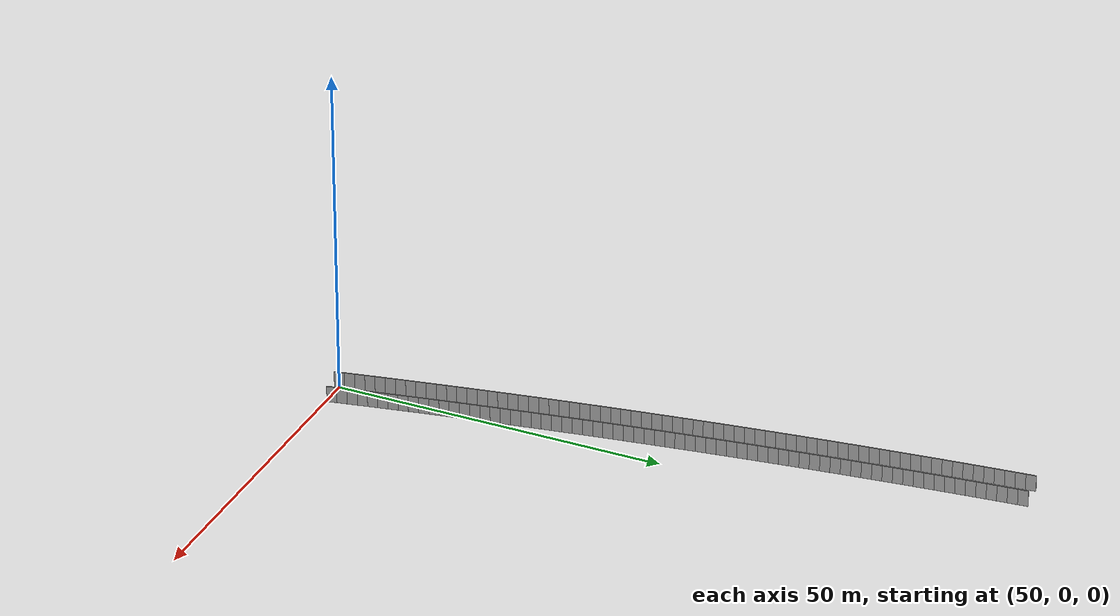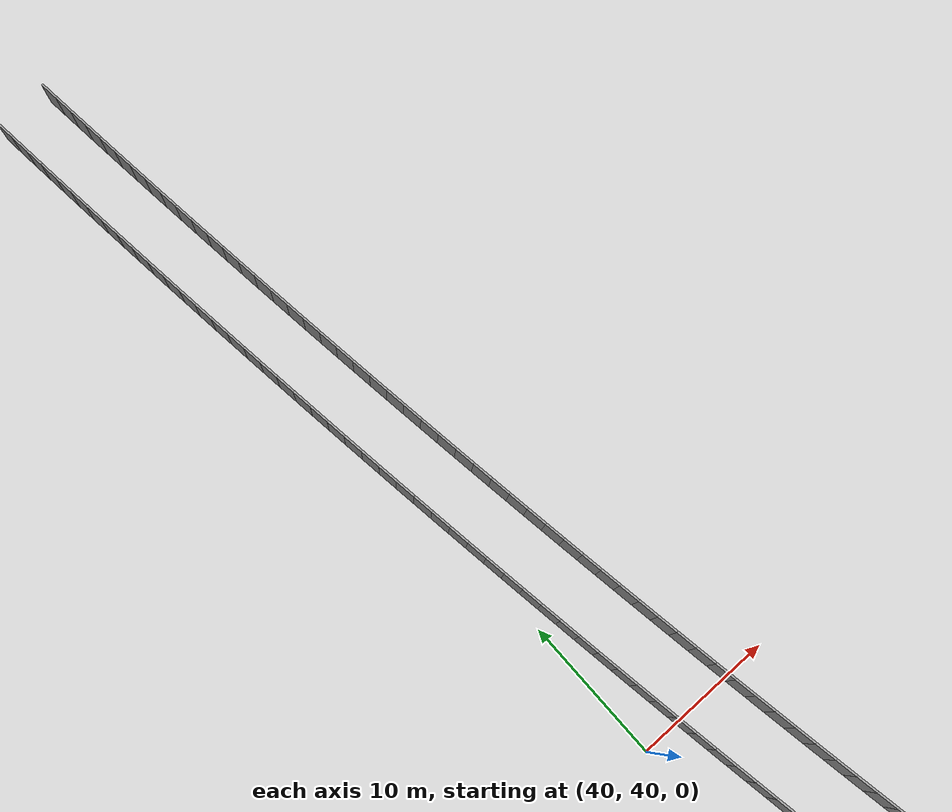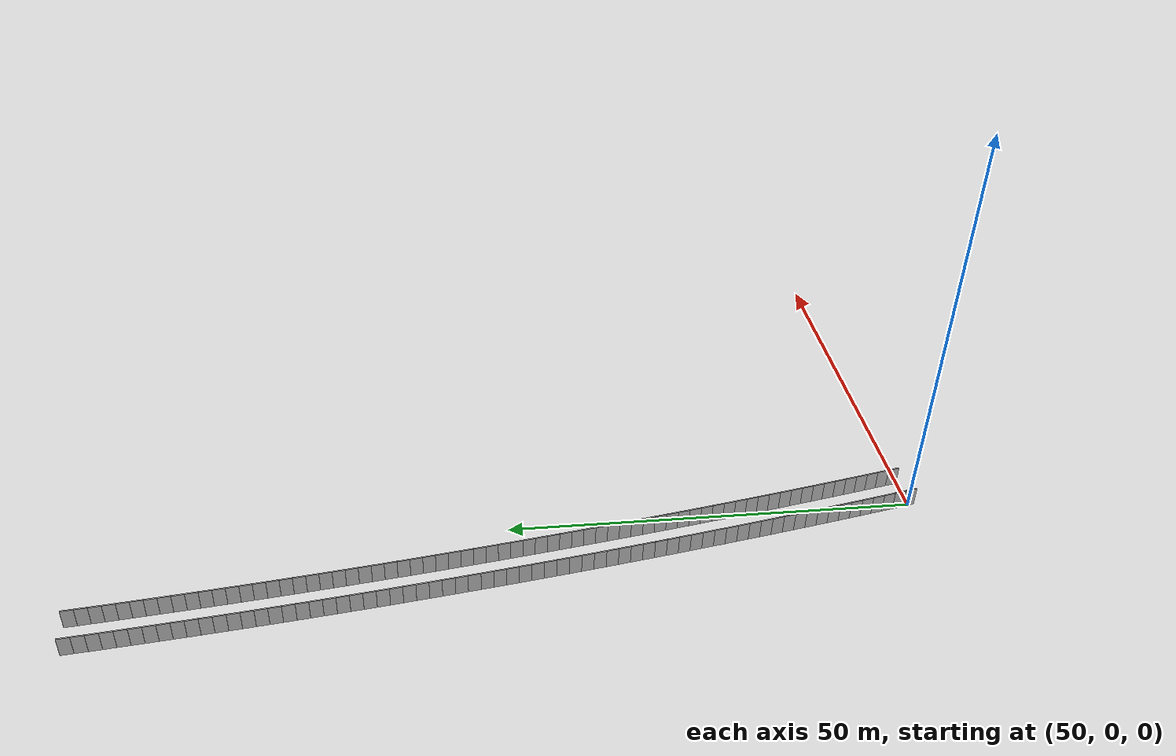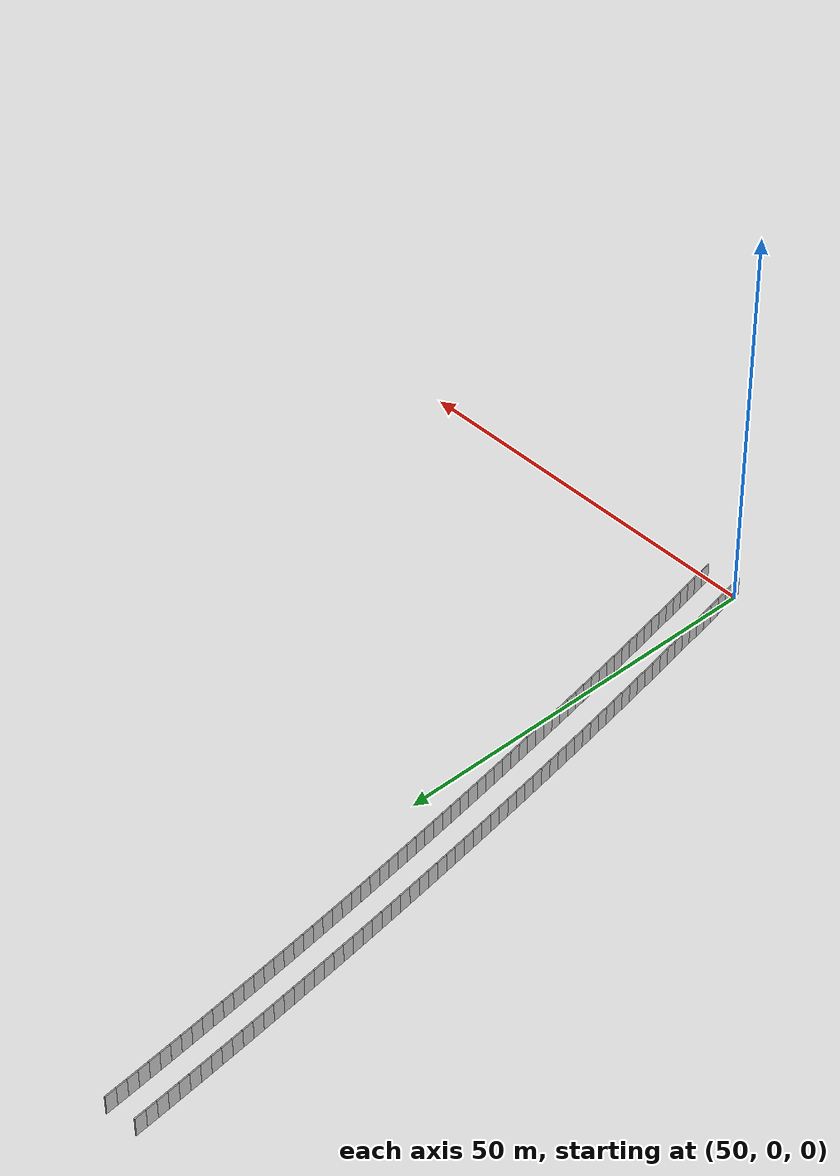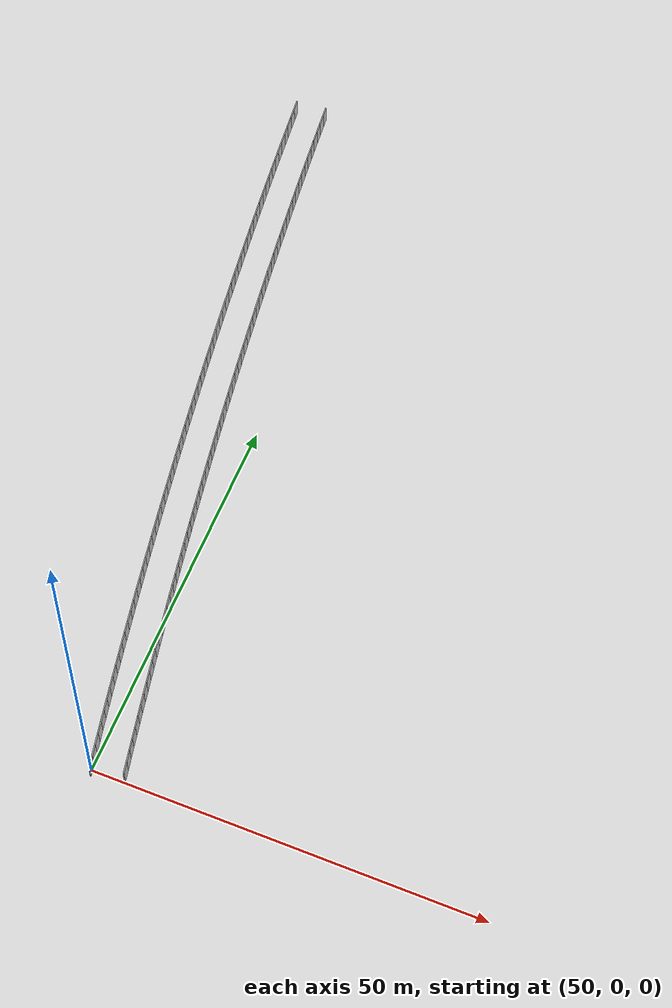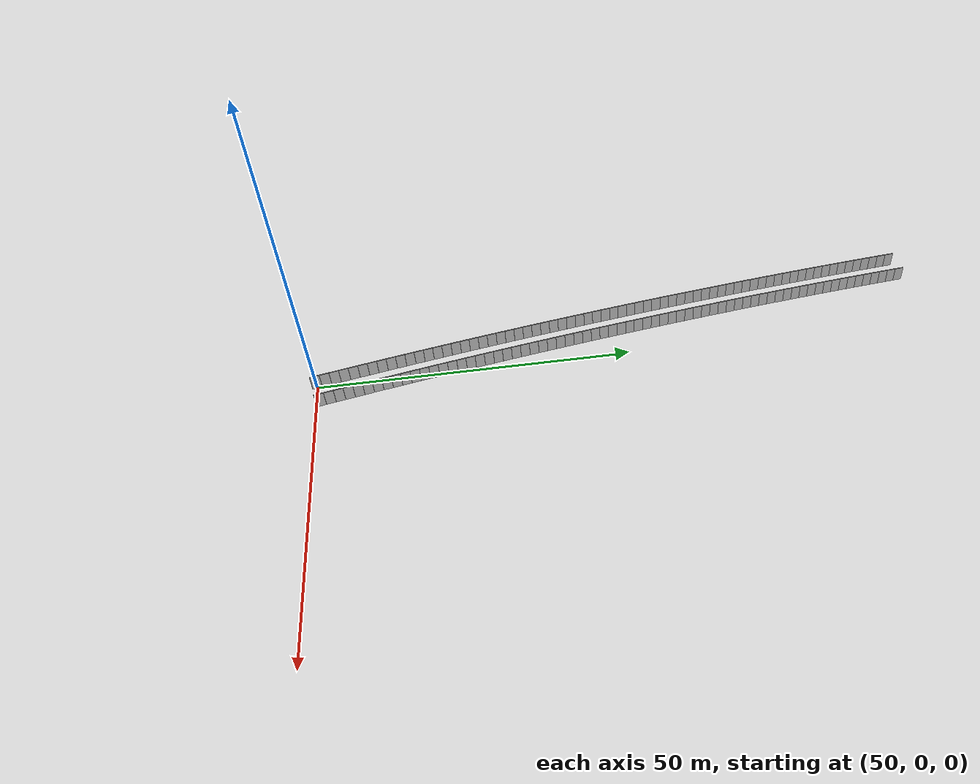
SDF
<sdf version="1.6">
 <model name="sps_0111">
  <static>1</static>
  <allow_auto_disable>0</allow_auto_disable>
  <link name="Wall5310">
   <collision name="collision"><geometry><box><size>1.49644 0.15 2.5</size></box></geometry></collision>
   <visual name="visual">
    <geometry><box><size>1.49644 0.15 2.5</size></box></geometry>
    <transparency>0.0</transparency>
   </visual>
   <pose>38.9795 99.9341 1.25 0 0 -1.47238</pose>
  </link>
  <link name="Wall5311">
   <collision name="collision"><geometry><box><size>1.49667 0.15 2.5</size></box></geometry></collision>
   <visual name="visual">
    <geometry><box><size>1.49667 0.15 2.5</size></box></geometry>
    <transparency>0.0</transparency>
   </visual>
   <pose>39.1278 98.4449 1.25 0 0 -1.4708</pose>
  </link>
  <link name="Wall5312">
   <collision name="collision"><geometry><box><size>1.49649 0.15 2.5</size></box></geometry></collision>
   <visual name="visual">
    <geometry><box><size>1.49649 0.15 2.5</size></box></geometry>
    <transparency>0.0</transparency>
   </visual>
   <pose>39.2784 96.9559 1.25 0 0 -1.46919</pose>
  </link>
  <link name="Wall5313">
   <collision name="collision"><geometry><box><size>1.49653 0.15 2.5</size></box></geometry></collision>
   <visual name="visual">
    <geometry><box><size>1.49653 0.15 2.5</size></box></geometry>
    <transparency>0.0</transparency>
   </visual>
   <pose>39.4313 95.4672 1.25 0 0 -1.46771</pose>
  </link>
  <link name="Wall5314">
   <collision name="collision"><geometry><box><size>1.49644 0.15 2.5</size></box></geometry></collision>
   <visual name="visual">
    <geometry><box><size>1.49644 0.15 2.5</size></box></geometry>
    <transparency>0.0</transparency>
   </visual>
   <pose>39.5866 93.9788 1.25 0 0 -1.46595</pose>
  </link>
  <link name="Wall5315">
   <collision name="collision"><geometry><box><size>1.49666 0.15 2.5</size></box></geometry></collision>
   <visual name="visual">
    <geometry><box><size>1.49666 0.15 2.5</size></box></geometry>
    <transparency>0.0</transparency>
   </visual>
   <pose>39.7443 92.4906 1.25 0 0 -1.46453</pose>
  </link>
  <link name="Wall5316">
   <collision name="collision"><geometry><box><size>1.49648 0.15 2.5</size></box></geometry></collision>
   <visual name="visual">
    <geometry><box><size>1.49648 0.15 2.5</size></box></geometry>
    <transparency>0.0</transparency>
   </visual>
   <pose>39.9041 91.0026 1.25 0 0 -1.46299</pose>
  </link>
  <link name="Wall5317">
   <collision name="collision"><geometry><box><size>1.49656 0.15 2.5</size></box></geometry></collision>
   <visual name="visual">
    <geometry><box><size>1.49656 0.15 2.5</size></box></geometry>
    <transparency>0.0</transparency>
   </visual>
   <pose>40.0663 89.5149 1.25 0 0 -1.4614</pose>
  </link>
  <link name="Wall5318">
   <collision name="collision"><geometry><box><size>1.49642 0.15 2.5</size></box></geometry></collision>
   <visual name="visual">
    <geometry><box><size>1.49642 0.15 2.5</size></box></geometry>
    <transparency>0.0</transparency>
   </visual>
   <pose>40.231 88.0275 1.25 0 0 -1.45963</pose>
  </link>
  <link name="Wall5319">
   <collision name="collision"><geometry><box><size>1.4965 0.15 2.5</size></box></geometry></collision>
   <visual name="visual">
    <geometry><box><size>1.4965 0.15 2.5</size></box></geometry>
    <transparency>0.0</transparency>
   </visual>
   <pose>40.3982 86.5404 1.25 0 0 -1.45803</pose>
  </link>
  <link name="Wall5320">
   <collision name="collision"><geometry><box><size>1.49657 0.15 2.5</size></box></geometry></collision>
   <visual name="visual">
    <geometry><box><size>1.49657 0.15 2.5</size></box></geometry>
    <transparency>0.0</transparency>
   </visual>
   <pose>40.5677 85.0535 1.25 0 0 -1.45656</pose>
  </link>
  <link name="Wall5321">
   <collision name="collision"><geometry><box><size>1.49658 0.15 2.5</size></box></geometry></collision>
   <visual name="visual">
    <geometry><box><size>1.49658 0.15 2.5</size></box></geometry>
    <transparency>0.0</transparency>
   </visual>
   <pose>40.7394 83.5668 1.25 0 0 -1.45508</pose>
  </link>
  <link name="Wall5322">
   <collision name="collision"><geometry><box><size>1.49652 0.15 2.5</size></box></geometry></collision>
   <visual name="visual">
    <geometry><box><size>1.49652 0.15 2.5</size></box></geometry>
    <transparency>0.0</transparency>
   </visual>
   <pose>40.9135 82.0804 1.25 0 0 -1.45331</pose>
  </link>
  <link name="Wall5323">
   <collision name="collision"><geometry><box><size>1.4966 0.15 2.5</size></box></geometry></collision>
   <visual name="visual">
    <geometry><box><size>1.4966 0.15 2.5</size></box></geometry>
    <transparency>0.0</transparency>
   </visual>
   <pose>41.09 80.5943 1.25 0 0 -1.45184</pose>
  </link>
  <link name="Wall5324">
   <collision name="collision"><geometry><box><size>1.49646 0.15 2.5</size></box></geometry></collision>
   <visual name="visual">
    <geometry><box><size>1.49646 0.15 2.5</size></box></geometry>
    <transparency>0.0</transparency>
   </visual>
   <pose>41.2689 79.1085 1.25 0 0 -1.45023</pose>
  </link>
  <link name="Wall5325">
   <collision name="collision"><geometry><box><size>1.49657 0.15 2.5</size></box></geometry></collision>
   <visual name="visual">
    <geometry><box><size>1.49657 0.15 2.5</size></box></geometry>
    <transparency>0.0</transparency>
   </visual>
   <pose>41.4501 77.623 1.25 0 0 -1.44859</pose>
  </link>
  <link name="Wall5326">
   <collision name="collision"><geometry><box><size>1.49643 0.15 2.5</size></box></geometry></collision>
   <visual name="visual">
    <geometry><box><size>1.49643 0.15 2.5</size></box></geometry>
    <transparency>0.0</transparency>
   </visual>
   <pose>41.6337 76.1378 1.25 0 0 -1.44702</pose>
  </link>
  <link name="Wall5327">
   <collision name="collision"><geometry><box><size>1.49653 0.15 2.5</size></box></geometry></collision>
   <visual name="visual">
    <geometry><box><size>1.49653 0.15 2.5</size></box></geometry>
    <transparency>0.0</transparency>
   </visual>
   <pose>41.8195 74.6529 1.25 0 0 -1.44551</pose>
  </link>
  <link name="Wall5328">
   <collision name="collision"><geometry><box><size>1.49659 0.15 2.5</size></box></geometry></collision>
   <visual name="visual">
    <geometry><box><size>1.49659 0.15 2.5</size></box></geometry>
    <transparency>0.0</transparency>
   </visual>
   <pose>42.0077 73.1682 1.25 0 0 -1.44391</pose>
  </link>
  <link name="Wall5329">
   <collision name="collision"><geometry><box><size>1.49657 0.15 2.5</size></box></geometry></collision>
   <visual name="visual">
    <geometry><box><size>1.49657 0.15 2.5</size></box></geometry>
    <transparency>0.0</transparency>
   </visual>
   <pose>42.1982 71.6838 1.25 0 0 -1.44242</pose>
  </link>
  <link name="Wall5330">
   <collision name="collision"><geometry><box><size>1.49642 0.15 2.5</size></box></geometry></collision>
   <visual name="visual">
    <geometry><box><size>1.49642 0.15 2.5</size></box></geometry>
    <transparency>0.0</transparency>
   </visual>
   <pose>42.3911 70.1998 1.25 0 0 -1.44064</pose>
  </link>
  <link name="Wall5331">
   <collision name="collision"><geometry><box><size>1.49655 0.15 2.5</size></box></geometry></collision>
   <visual name="visual">
    <geometry><box><size>1.49655 0.15 2.5</size></box></geometry>
    <transparency>0.0</transparency>
   </visual>
   <pose>42.5865 68.7161 1.25 0 0 -1.43905</pose>
  </link>
  <link name="Wall5332">
   <collision name="collision"><geometry><box><size>1.49648 0.15 2.5</size></box></geometry></collision>
   <visual name="visual">
    <geometry><box><size>1.49648 0.15 2.5</size></box></geometry>
    <transparency>0.0</transparency>
   </visual>
   <pose>42.7842 67.2327 1.25 0 0 -1.43756</pose>
  </link>
  <link name="Wall5333">
   <collision name="collision"><geometry><box><size>1.49662 0.15 2.5</size></box></geometry></collision>
   <visual name="visual">
    <geometry><box><size>1.49662 0.15 2.5</size></box></geometry>
    <transparency>0.0</transparency>
   </visual>
   <pose>42.9842 65.7496 1.25 0 0 -1.43593</pose>
  </link>
  <link name="Wall5334">
   <collision name="collision"><geometry><box><size>1.49649 0.15 2.5</size></box></geometry></collision>
   <visual name="visual">
    <geometry><box><size>1.49649 0.15 2.5</size></box></geometry>
    <transparency>0.0</transparency>
   </visual>
   <pose>43.1865 64.2668 1.25 0 0 -1.43448</pose>
  </link>
  <link name="Wall5335">
   <collision name="collision"><geometry><box><size>1.49643 0.15 2.5</size></box></geometry></collision>
   <visual name="visual">
    <geometry><box><size>1.49643 0.15 2.5</size></box></geometry>
    <transparency>0.0</transparency>
   </visual>
   <pose>43.3913 62.7844 1.25 0 0 -1.43266</pose>
  </link>
  <link name="Wall5336">
   <collision name="collision"><geometry><box><size>1.49651 0.15 2.5</size></box></geometry></collision>
   <visual name="visual">
    <geometry><box><size>1.49651 0.15 2.5</size></box></geometry>
    <transparency>0.0</transparency>
   </visual>
   <pose>43.5983 61.3023 1.25 0 0 -1.43139</pose>
  </link>
  <link name="Wall5337">
   <collision name="collision"><geometry><box><size>1.49653 0.15 2.5</size></box></geometry></collision>
   <visual name="visual">
    <geometry><box><size>1.49653 0.15 2.5</size></box></geometry>
    <transparency>0.0</transparency>
   </visual>
   <pose>43.8075 59.8205 1.25 0 0 -1.42958</pose>
  </link>
  <link name="Wall5338">
   <collision name="collision"><geometry><box><size>1.49659 0.15 2.5</size></box></geometry></collision>
   <visual name="visual">
    <geometry><box><size>1.49659 0.15 2.5</size></box></geometry>
    <transparency>0.0</transparency>
   </visual>
   <pose>44.0192 58.339 1.25 0 0 -1.42814</pose>
  </link>
  <link name="Wall5339">
   <collision name="collision"><geometry><box><size>1.49633 0.15 2.5</size></box></geometry></collision>
   <visual name="visual">
    <geometry><box><size>1.49633 0.15 2.5</size></box></geometry>
    <transparency>0.0</transparency>
   </visual>
   <pose>44.2332 56.8579 1.25 0 0 -1.42647</pose>
  </link>
  <link name="Wall5340">
   <collision name="collision"><geometry><box><size>1.49677 0.15 2.5</size></box></geometry></collision>
   <visual name="visual">
    <geometry><box><size>1.49677 0.15 2.5</size></box></geometry>
    <transparency>0.0</transparency>
   </visual>
   <pose>44.4498 55.3771 1.25 0 0 -1.42474</pose>
  </link>
  <link name="Wall5341">
   <collision name="collision"><geometry><box><size>1.49642 0.15 2.5</size></box></geometry></collision>
   <visual name="visual">
    <geometry><box><size>1.49642 0.15 2.5</size></box></geometry>
    <transparency>0.0</transparency>
   </visual>
   <pose>44.6687 53.8966 1.25 0 0 -1.42326</pose>
  </link>
  <link name="Wall5342">
   <collision name="collision"><geometry><box><size>1.49663 0.15 2.5</size></box></geometry></collision>
   <visual name="visual">
    <geometry><box><size>1.49663 0.15 2.5</size></box></geometry>
    <transparency>0.0</transparency>
   </visual>
   <pose>44.8898 52.4165 1.25 0 0 -1.42176</pose>
  </link>
  <link name="Wall5343">
   <collision name="collision"><geometry><box><size>1.49632 0.15 2.5</size></box></geometry></collision>
   <visual name="visual">
    <geometry><box><size>1.49632 0.15 2.5</size></box></geometry>
    <transparency>0.0</transparency>
   </visual>
   <pose>45.1132 50.9368 1.25 0 0 -1.42012</pose>
  </link>
  <link name="Wall5344">
   <collision name="collision"><geometry><box><size>1.4965 0.15 2.5</size></box></geometry></collision>
   <visual name="visual">
    <geometry><box><size>1.4965 0.15 2.5</size></box></geometry>
    <transparency>0.0</transparency>
   </visual>
   <pose>45.339 49.4575 1.25 0 0 -1.41853</pose>
  </link>
  <link name="Wall5345">
   <collision name="collision"><geometry><box><size>1.4965 0.15 2.5</size></box></geometry></collision>
   <visual name="visual">
    <geometry><box><size>1.4965 0.15 2.5</size></box></geometry>
    <transparency>0.0</transparency>
   </visual>
   <pose>45.5672 47.9785 1.25 0 0 -1.41692</pose>
  </link>
  <link name="Wall5346">
   <collision name="collision"><geometry><box><size>1.49664 0.15 2.5</size></box></geometry></collision>
   <visual name="visual">
    <geometry><box><size>1.49664 0.15 2.5</size></box></geometry>
    <transparency>0.0</transparency>
   </visual>
   <pose>45.7978 46.4998 1.25 0 0 -1.41528</pose>
  </link>
  <link name="Wall5347">
   <collision name="collision"><geometry><box><size>1.49644 0.15 2.5</size></box></geometry></collision>
   <visual name="visual">
    <geometry><box><size>1.49644 0.15 2.5</size></box></geometry>
    <transparency>0.0</transparency>
   </visual>
   <pose>46.0307 45.0215 1.25 0 0 -1.41377</pose>
  </link>
  <link name="Wall5348">
   <collision name="collision"><geometry><box><size>1.49657 0.15 2.5</size></box></geometry></collision>
   <visual name="visual">
    <geometry><box><size>1.49657 0.15 2.5</size></box></geometry>
    <transparency>0.0</transparency>
   </visual>
   <pose>46.2659 43.5436 1.25 0 0 -1.41218</pose>
  </link>
  <link name="Wall5349">
   <collision name="collision"><geometry><box><size>1.49638 0.15 2.5</size></box></geometry></collision>
   <visual name="visual">
    <geometry><box><size>1.49638 0.15 2.5</size></box></geometry>
    <transparency>0.0</transparency>
   </visual>
   <pose>46.5033 42.0661 1.25 0 0 -1.41067</pose>
  </link>
  <link name="Wall5350">
   <collision name="collision"><geometry><box><size>1.49653 0.15 2.5</size></box></geometry></collision>
   <visual name="visual">
    <geometry><box><size>1.49653 0.15 2.5</size></box></geometry>
    <transparency>0.0</transparency>
   </visual>
   <pose>46.7432 40.589 1.25 0 0 -1.40903</pose>
  </link>
  <link name="Wall5351">
   <collision name="collision"><geometry><box><size>1.49673 0.15 2.5</size></box></geometry></collision>
   <visual name="visual">
    <geometry><box><size>1.49673 0.15 2.5</size></box></geometry>
    <transparency>0.0</transparency>
   </visual>
   <pose>46.9854 39.1121 1.25 0 0 -1.40744</pose>
  </link>
  <link name="Wall5352">
   <collision name="collision"><geometry><box><size>1.49649 0.15 2.5</size></box></geometry></collision>
   <visual name="visual">
    <geometry><box><size>1.49649 0.15 2.5</size></box></geometry>
    <transparency>0.0</transparency>
   </visual>
   <pose>47.2299 37.6356 1.25 0 0 -1.40593</pose>
  </link>
  <link name="Wall5353">
   <collision name="collision"><geometry><box><size>1.49646 0.15 2.5</size></box></geometry></collision>
   <visual name="visual">
    <geometry><box><size>1.49646 0.15 2.5</size></box></geometry>
    <transparency>0.0</transparency>
   </visual>
   <pose>47.4767 36.1596 1.25 0 0 -1.40431</pose>
  </link>
  <link name="Wall5354">
   <collision name="collision"><geometry><box><size>1.49649 0.15 2.5</size></box></geometry></collision>
   <visual name="visual">
    <geometry><box><size>1.49649 0.15 2.5</size></box></geometry>
    <transparency>0.0</transparency>
   </visual>
   <pose>47.7259 34.684 1.25 0 0 -1.4027</pose>
  </link>
  <link name="Wall5355">
   <collision name="collision"><geometry><box><size>1.49654 0.15 2.5</size></box></geometry></collision>
   <visual name="visual">
    <geometry><box><size>1.49654 0.15 2.5</size></box></geometry>
    <transparency>0.0</transparency>
   </visual>
   <pose>47.9774 33.2088 1.25 0 0 -1.40105</pose>
  </link>
  <link name="Wall5356">
   <collision name="collision"><geometry><box><size>1.49647 0.15 2.5</size></box></geometry></collision>
   <visual name="visual">
    <geometry><box><size>1.49647 0.15 2.5</size></box></geometry>
    <transparency>0.0</transparency>
   </visual>
   <pose>48.2314 31.734 1.25 0 0 -1.39943</pose>
  </link>
  <link name="Wall5357">
   <collision name="collision"><geometry><box><size>1.49655 0.15 2.5</size></box></geometry></collision>
   <visual name="visual">
    <geometry><box><size>1.49655 0.15 2.5</size></box></geometry>
    <transparency>0.0</transparency>
   </visual>
   <pose>48.4878 30.2596 1.25 0 0 -1.39791</pose>
  </link>
  <link name="Wall5358">
   <collision name="collision"><geometry><box><size>1.49647 0.15 2.5</size></box></geometry></collision>
   <visual name="visual">
    <geometry><box><size>1.49647 0.15 2.5</size></box></geometry>
    <transparency>0.0</transparency>
   </visual>
   <pose>48.7464 28.7856 1.25 0 0 -1.39633</pose>
  </link>
  <link name="Wall5359">
   <collision name="collision"><geometry><box><size>1.49657 0.15 2.5</size></box></geometry></collision>
   <visual name="visual">
    <geometry><box><size>1.49657 0.15 2.5</size></box></geometry>
    <transparency>0.0</transparency>
   </visual>
   <pose>49.0073 27.312 1.25 0 0 -1.39481</pose>
  </link>
  <link name="Wall5360">
   <collision name="collision"><geometry><box><size>1.4965 0.15 2.5</size></box></geometry></collision>
   <visual name="visual">
    <geometry><box><size>1.4965 0.15 2.5</size></box></geometry>
    <transparency>0.0</transparency>
   </visual>
   <pose>49.2705 25.8388 1.25 0 0 -1.39318</pose>
  </link>
  <link name="Wall5361">
   <collision name="collision"><geometry><box><size>1.49653 0.15 2.5</size></box></geometry></collision>
   <visual name="visual">
    <geometry><box><size>1.49653 0.15 2.5</size></box></geometry>
    <transparency>0.0</transparency>
   </visual>
   <pose>49.536 24.366 1.25 0 0 -1.39169</pose>
  </link>
  <link name="Wall5362">
   <collision name="collision"><geometry><box><size>1.49642 0.15 2.5</size></box></geometry></collision>
   <visual name="visual">
    <geometry><box><size>1.49642 0.15 2.5</size></box></geometry>
    <transparency>0.0</transparency>
   </visual>
   <pose>49.8038 22.8937 1.25 0 0 -1.39006</pose>
  </link>
  <link name="Wall5363">
   <collision name="collision"><geometry><box><size>1.49634 0.15 2.5</size></box></geometry></collision>
   <visual name="visual">
    <geometry><box><size>1.49634 0.15 2.5</size></box></geometry>
    <transparency>0.0</transparency>
   </visual>
   <pose>50.0738 21.4219 1.25 0 0 -1.38856</pose>
  </link>
  <link name="Wall5364">
   <collision name="collision"><geometry><box><size>1.49645 0.15 2.5</size></box></geometry></collision>
   <visual name="visual">
    <geometry><box><size>1.49645 0.15 2.5</size></box></geometry>
    <transparency>0.0</transparency>
   </visual>
   <pose>50.3463 19.9505 1.25 0 0 -1.38679</pose>
  </link>
  <link name="Wall5365">
   <collision name="collision"><geometry><box><size>1.4965 0.15 2.5</size></box></geometry></collision>
   <visual name="visual">
    <geometry><box><size>1.4965 0.15 2.5</size></box></geometry>
    <transparency>0.0</transparency>
   </visual>
   <pose>50.6212 18.4795 1.25 0 0 -1.3853</pose>
  </link>
  <link name="Wall5366">
   <collision name="collision"><geometry><box><size>1.49656 0.15 2.5</size></box></geometry></collision>
   <visual name="visual">
    <geometry><box><size>1.49656 0.15 2.5</size></box></geometry>
    <transparency>0.0</transparency>
   </visual>
   <pose>50.8986 17.0089 1.25 0 0 -1.38353</pose>
  </link>
  <link name="Wall5367">
   <collision name="collision"><geometry><box><size>1.49657 0.15 2.5</size></box></geometry></collision>
   <visual name="visual">
    <geometry><box><size>1.49657 0.15 2.5</size></box></geometry>
    <transparency>0.0</transparency>
   </visual>
   <pose>51.1782 15.5387 1.25 0 0 -1.3822</pose>
  </link>
  <link name="Wall5368">
   <collision name="collision"><geometry><box><size>1.4964 0.15 2.5</size></box></geometry></collision>
   <visual name="visual">
    <geometry><box><size>1.4964 0.15 2.5</size></box></geometry>
    <transparency>0.0</transparency>
   </visual>
   <pose>51.46 14.069 1.25 0 0 -1.38039</pose>
  </link>
  <link name="Wall5369">
   <collision name="collision"><geometry><box><size>1.4967 0.15 2.5</size></box></geometry></collision>
   <visual name="visual">
    <geometry><box><size>1.4967 0.15 2.5</size></box></geometry>
    <transparency>0.0</transparency>
   </visual>
   <pose>51.7443 12.5997 1.25 0 0 -1.37894</pose>
  </link>
  <link name="Wall5370">
   <collision name="collision"><geometry><box><size>1.49646 0.15 2.5</size></box></geometry></collision>
   <visual name="visual">
    <geometry><box><size>1.49646 0.15 2.5</size></box></geometry>
    <transparency>0.0</transparency>
   </visual>
   <pose>52.0308 11.1308 1.25 0 0 -1.37741</pose>
  </link>
  <link name="Wall5371">
   <collision name="collision"><geometry><box><size>1.49657 0.15 2.5</size></box></geometry></collision>
   <visual name="visual">
    <geometry><box><size>1.49657 0.15 2.5</size></box></geometry>
    <transparency>0.0</transparency>
   </visual>
   <pose>52.3197 9.6624 1.25 0 0 -1.37576</pose>
  </link>
  <link name="Wall5372">
   <collision name="collision"><geometry><box><size>1.49667 0.15 2.5</size></box></geometry></collision>
   <visual name="visual">
    <geometry><box><size>1.49667 0.15 2.5</size></box></geometry>
    <transparency>0.0</transparency>
   </visual>
   <pose>52.6109 8.19438 1.25 0 0 -1.37419</pose>
  </link>
  <link name="Wall5373">
   <collision name="collision"><geometry><box><size>1.49649 0.15 2.5</size></box></geometry></collision>
   <visual name="visual">
    <geometry><box><size>1.49649 0.15 2.5</size></box></geometry>
    <transparency>0.0</transparency>
   </visual>
   <pose>52.9044 6.72688 1.25 0 0 -1.3725</pose>
  </link>
  <link name="Wall5374">
   <collision name="collision"><geometry><box><size>1.49656 0.15 2.5</size></box></geometry></collision>
   <visual name="visual">
    <geometry><box><size>1.49656 0.15 2.5</size></box></geometry>
    <transparency>0.0</transparency>
   </visual>
   <pose>53.2003 5.2599 1.25 0 0 -1.37102</pose>
  </link>
  <link name="Wall5375">
   <collision name="collision"><geometry><box><size>1.4964 0.15 2.5</size></box></geometry></collision>
   <visual name="visual">
    <geometry><box><size>1.4964 0.15 2.5</size></box></geometry>
    <transparency>0.0</transparency>
   </visual>
   <pose>53.4984 3.79341 1.25 0 0 -1.3695</pose>
  </link>
  <link name="Wall5376">
   <collision name="collision"><geometry><box><size>1.49639 0.15 2.5</size></box></geometry></collision>
   <visual name="visual">
    <geometry><box><size>1.49639 0.15 2.5</size></box></geometry>
    <transparency>0.0</transparency>
   </visual>
   <pose>53.7989 2.3275 1.25 0 0 -1.36771</pose>
  </link>
  <link name="Wall5377">
   <collision name="collision"><geometry><box><size>1.4966 0.15 2.5</size></box></geometry></collision>
   <visual name="visual">
    <geometry><box><size>1.4966 0.15 2.5</size></box></geometry>
    <transparency>0.0</transparency>
   </visual>
   <pose>54.1019 0.861983 1.25 0 0 -1.36623</pose>
  </link>
  <link name="Wall7106">
   <collision name="collision"><geometry><box><size>1.50305 0.15 2.5</size></box></geometry></collision>
   <visual name="visual">
    <geometry><box><size>1.50305 0.15 2.5</size></box></geometry>
    <transparency>0.0</transparency>
   </visual>
   <pose>34.8603 99.5272 1.25 0 0 -1.47245</pose>
  </link>
  <link name="Wall7107">
   <collision name="collision"><geometry><box><size>1.50313 0.15 2.5</size></box></geometry></collision>
   <visual name="visual">
    <geometry><box><size>1.50313 0.15 2.5</size></box></geometry>
    <transparency>0.0</transparency>
   </visual>
   <pose>35.0091 98.0315 1.25 0 0 -1.4707</pose>
  </link>
  <link name="Wall7108">
   <collision name="collision"><geometry><box><size>1.50317 0.15 2.5</size></box></geometry></collision>
   <visual name="visual">
    <geometry><box><size>1.50317 0.15 2.5</size></box></geometry>
    <transparency>0.0</transparency>
   </visual>
   <pose>35.1605 96.536 1.25 0 0 -1.46923</pose>
  </link>
  <link name="Wall7109">
   <collision name="collision"><geometry><box><size>1.50299 0.15 2.5</size></box></geometry></collision>
   <visual name="visual">
    <geometry><box><size>1.50299 0.15 2.5</size></box></geometry>
    <transparency>0.0</transparency>
   </visual>
   <pose>35.314 95.0408 1.25 0 0 -1.46763</pose>
  </link>
  <link name="Wall7110">
   <collision name="collision"><geometry><box><size>1.50306 0.15 2.5</size></box></geometry></collision>
   <visual name="visual">
    <geometry><box><size>1.50306 0.15 2.5</size></box></geometry>
    <transparency>0.0</transparency>
   </visual>
   <pose>35.4701 93.5459 1.25 0 0 -1.466</pose>
  </link>
  <link name="Wall7111">
   <collision name="collision"><geometry><box><size>1.50304 0.15 2.5</size></box></geometry></collision>
   <visual name="visual">
    <geometry><box><size>1.50304 0.15 2.5</size></box></geometry>
    <transparency>0.0</transparency>
   </visual>
   <pose>35.6283 92.0512 1.25 0 0 -1.46457</pose>
  </link>
  <link name="Wall7112">
   <collision name="collision"><geometry><box><size>1.50336 0.15 2.5</size></box></geometry></collision>
   <visual name="visual">
    <geometry><box><size>1.50336 0.15 2.5</size></box></geometry>
    <transparency>0.0</transparency>
   </visual>
   <pose>35.7889 90.5566 1.25 0 0 -1.46296</pose>
  </link>
  <link name="Wall7113">
   <collision name="collision"><geometry><box><size>1.50296 0.15 2.5</size></box></geometry></collision>
   <visual name="visual">
    <geometry><box><size>1.50296 0.15 2.5</size></box></geometry>
    <transparency>0.0</transparency>
   </visual>
   <pose>35.952 89.0623 1.25 0 0 -1.4613</pose>
  </link>
  <link name="Wall7114">
   <collision name="collision"><geometry><box><size>1.50309 0.15 2.5</size></box></geometry></collision>
   <visual name="visual">
    <geometry><box><size>1.50309 0.15 2.5</size></box></geometry>
    <transparency>0.0</transparency>
   </visual>
   <pose>36.1174 87.5684 1.25 0 0 -1.45975</pose>
  </link>
  <link name="Wall7115">
   <collision name="collision"><geometry><box><size>1.50312 0.15 2.5</size></box></geometry></collision>
   <visual name="visual">
    <geometry><box><size>1.50312 0.15 2.5</size></box></geometry>
    <transparency>0.0</transparency>
   </visual>
   <pose>36.2851 86.0747 1.25 0 0 -1.45812</pose>
  </link>
  <link name="Wall7116">
   <collision name="collision"><geometry><box><size>1.50303 0.15 2.5</size></box></geometry></collision>
   <visual name="visual">
    <geometry><box><size>1.50303 0.15 2.5</size></box></geometry>
    <transparency>0.0</transparency>
   </visual>
   <pose>36.4553 84.5813 1.25 0 0 -1.45652</pose>
  </link>
  <link name="Wall7117">
   <collision name="collision"><geometry><box><size>1.50305 0.15 2.5</size></box></geometry></collision>
   <visual name="visual">
    <geometry><box><size>1.50305 0.15 2.5</size></box></geometry>
    <transparency>0.0</transparency>
   </visual>
   <pose>36.6279 83.0882 1.25 0 0 -1.45501</pose>
  </link>
  <link name="Wall7118">
   <collision name="collision"><geometry><box><size>1.50315 0.15 2.5</size></box></geometry></collision>
   <visual name="visual">
    <geometry><box><size>1.50315 0.15 2.5</size></box></geometry>
    <transparency>0.0</transparency>
   </visual>
   <pose>36.8028 81.5953 1.25 0 0 -1.45334</pose>
  </link>
  <link name="Wall7119">
   <collision name="collision"><geometry><box><size>1.503 0.15 2.5</size></box></geometry></collision>
   <visual name="visual">
    <geometry><box><size>1.503 0.15 2.5</size></box></geometry>
    <transparency>0.0</transparency>
   </visual>
   <pose>36.98 80.1027 1.25 0 0 -1.45182</pose>
  </link>
  <link name="Wall7120">
   <collision name="collision"><geometry><box><size>1.50317 0.15 2.5</size></box></geometry></collision>
   <visual name="visual">
    <geometry><box><size>1.50317 0.15 2.5</size></box></geometry>
    <transparency>0.0</transparency>
   </visual>
   <pose>37.1597 78.6104 1.25 0 0 -1.45019</pose>
  </link>
  <link name="Wall7121">
   <collision name="collision"><geometry><box><size>1.50318 0.15 2.5</size></box></geometry></collision>
   <visual name="visual">
    <geometry><box><size>1.50318 0.15 2.5</size></box></geometry>
    <transparency>0.0</transparency>
   </visual>
   <pose>37.3416 77.1183 1.25 0 0 -1.44876</pose>
  </link>
  <link name="Wall7122">
   <collision name="collision"><geometry><box><size>1.50308 0.15 2.5</size></box></geometry></collision>
   <visual name="visual">
    <geometry><box><size>1.50308 0.15 2.5</size></box></geometry>
    <transparency>0.0</transparency>
   </visual>
   <pose>37.5259 75.6265 1.25 0 0 -1.447</pose>
  </link>
  <link name="Wall7123">
   <collision name="collision"><geometry><box><size>1.50299 0.15 2.5</size></box></geometry></collision>
   <visual name="visual">
    <geometry><box><size>1.50299 0.15 2.5</size></box></geometry>
    <transparency>0.0</transparency>
   </visual>
   <pose>37.7126 74.1351 1.25 0 0 -1.44551</pose>
  </link>
  <link name="Wall7124">
   <collision name="collision"><geometry><box><size>1.50307 0.15 2.5</size></box></geometry></collision>
   <visual name="visual">
    <geometry><box><size>1.50307 0.15 2.5</size></box></geometry>
    <transparency>0.0</transparency>
   </visual>
   <pose>37.9017 72.644 1.25 0 0 -1.4438</pose>
  </link>
  <link name="Wall7125">
   <collision name="collision"><geometry><box><size>1.50321 0.15 2.5</size></box></geometry></collision>
   <visual name="visual">
    <geometry><box><size>1.50321 0.15 2.5</size></box></geometry>
    <transparency>0.0</transparency>
   </visual>
   <pose>38.093 71.1531 1.25 0 0 -1.44246</pose>
  </link>
  <link name="Wall7126">
   <collision name="collision"><geometry><box><size>1.50288 0.15 2.5</size></box></geometry></collision>
   <visual name="visual">
    <geometry><box><size>1.50288 0.15 2.5</size></box></geometry>
    <transparency>0.0</transparency>
   </visual>
   <pose>38.2867 69.6626 1.25 0 0 -1.44067</pose>
  </link>
  <link name="Wall7127">
   <collision name="collision"><geometry><box><size>1.50301 0.15 2.5</size></box></geometry></collision>
   <visual name="visual">
    <geometry><box><size>1.50301 0.15 2.5</size></box></geometry>
    <transparency>0.0</transparency>
   </visual>
   <pose>38.4829 68.1725 1.25 0 0 -1.43909</pose>
  </link>
  <link name="Wall7128">
   <collision name="collision"><geometry><box><size>1.50315 0.15 2.5</size></box></geometry></collision>
   <visual name="visual">
    <geometry><box><size>1.50315 0.15 2.5</size></box></geometry>
    <transparency>0.0</transparency>
   </visual>
   <pose>38.6815 66.6826 1.25 0 0 -1.43746</pose>
  </link>
  <link name="Wall7129">
   <collision name="collision"><geometry><box><size>1.50302 0.15 2.5</size></box></geometry></collision>
   <visual name="visual">
    <geometry><box><size>1.50302 0.15 2.5</size></box></geometry>
    <transparency>0.0</transparency>
   </visual>
   <pose>38.8825 65.193 1.25 0 0 -1.43597</pose>
  </link>
  <link name="Wall7130">
   <collision name="collision"><geometry><box><size>1.50315 0.15 2.5</size></box></geometry></collision>
   <visual name="visual">
    <geometry><box><size>1.50315 0.15 2.5</size></box></geometry>
    <transparency>0.0</transparency>
   </visual>
   <pose>39.0857 63.7037 1.25 0 0 -1.43443</pose>
  </link>
  <link name="Wall7131">
   <collision name="collision"><geometry><box><size>1.50313 0.15 2.5</size></box></geometry></collision>
   <visual name="visual">
    <geometry><box><size>1.50313 0.15 2.5</size></box></geometry>
    <transparency>0.0</transparency>
   </visual>
   <pose>39.2913 62.2147 1.25 0 0 -1.43275</pose>
  </link>
  <link name="Wall7132">
   <collision name="collision"><geometry><box><size>1.50303 0.15 2.5</size></box></geometry></collision>
   <visual name="visual">
    <geometry><box><size>1.50303 0.15 2.5</size></box></geometry>
    <transparency>0.0</transparency>
   </visual>
   <pose>39.4993 60.7261 1.25 0 0 -1.43118</pose>
  </link>
  <link name="Wall7133">
   <collision name="collision"><geometry><box><size>1.50319 0.15 2.5</size></box></geometry></collision>
   <visual name="visual">
    <geometry><box><size>1.50319 0.15 2.5</size></box></geometry>
    <transparency>0.0</transparency>
   </visual>
   <pose>39.7096 59.2378 1.25 0 0 -1.42955</pose>
  </link>
  <link name="Wall7134">
   <collision name="collision"><geometry><box><size>1.50308 0.15 2.5</size></box></geometry></collision>
   <visual name="visual">
    <geometry><box><size>1.50308 0.15 2.5</size></box></geometry>
    <transparency>0.0</transparency>
   </visual>
   <pose>39.9224 57.7498 1.25 0 0 -1.42807</pose>
  </link>
  <link name="Wall7135">
   <collision name="collision"><geometry><box><size>1.50299 0.15 2.5</size></box></geometry></collision>
   <visual name="visual">
    <geometry><box><size>1.50299 0.15 2.5</size></box></geometry>
    <transparency>0.0</transparency>
   </visual>
   <pose>40.1374 56.2622 1.25 0 0 -1.42646</pose>
  </link>
  <link name="Wall7136">
   <collision name="collision"><geometry><box><size>1.50295 0.15 2.5</size></box></geometry></collision>
   <visual name="visual">
    <geometry><box><size>1.50295 0.15 2.5</size></box></geometry>
    <transparency>0.0</transparency>
   </visual>
   <pose>40.3546 54.775 1.25 0 0 -1.42498</pose>
  </link>
  <link name="Wall7137">
   <collision name="collision"><geometry><box><size>1.50313 0.15 2.5</size></box></geometry></collision>
   <visual name="visual">
    <geometry><box><size>1.50313 0.15 2.5</size></box></geometry>
    <transparency>0.0</transparency>
   </visual>
   <pose>40.5742 53.2881 1.25 0 0 -1.42335</pose>
  </link>
  <link name="Wall7138">
   <collision name="collision"><geometry><box><size>1.50308 0.15 2.5</size></box></geometry></collision>
   <visual name="visual">
    <geometry><box><size>1.50308 0.15 2.5</size></box></geometry>
    <transparency>0.0</transparency>
   </visual>
   <pose>40.7963 51.8015 1.25 0 0 -1.42162</pose>
  </link>
  <link name="Wall7139">
   <collision name="collision"><geometry><box><size>1.50323 0.15 2.5</size></box></geometry></collision>
   <visual name="visual">
    <geometry><box><size>1.50323 0.15 2.5</size></box></geometry>
    <transparency>0.0</transparency>
   </visual>
   <pose>41.0208 50.3152 1.25 0 0 -1.42016</pose>
  </link>
  <link name="Wall7140">
   <collision name="collision"><geometry><box><size>1.50299 0.15 2.5</size></box></geometry></collision>
   <visual name="visual">
    <geometry><box><size>1.50299 0.15 2.5</size></box></geometry>
    <transparency>0.0</transparency>
   </visual>
   <pose>41.2476 48.8293 1.25 0 0 -1.41849</pose>
  </link>
  <link name="Wall7141">
   <collision name="collision"><geometry><box><size>1.503 0.15 2.5</size></box></geometry></collision>
   <visual name="visual">
    <geometry><box><size>1.503 0.15 2.5</size></box></geometry>
    <transparency>0.0</transparency>
   </visual>
   <pose>41.4769 47.3439 1.25 0 0 -1.41689</pose>
  </link>
  <link name="Wall7142">
   <collision name="collision"><geometry><box><size>1.50309 0.15 2.5</size></box></geometry></collision>
   <visual name="visual">
    <geometry><box><size>1.50309 0.15 2.5</size></box></geometry>
    <transparency>0.0</transparency>
   </visual>
   <pose>41.7084 45.8588 1.25 0 0 -1.41542</pose>
  </link>
  <link name="Wall7143">
   <collision name="collision"><geometry><box><size>1.5031 0.15 2.5</size></box></geometry></collision>
   <visual name="visual">
    <geometry><box><size>1.5031 0.15 2.5</size></box></geometry>
    <transparency>0.0</transparency>
   </visual>
   <pose>41.9422 44.374 1.25 0 0 -1.41382</pose>
  </link>
  <link name="Wall7144">
   <collision name="collision"><geometry><box><size>1.50306 0.15 2.5</size></box></geometry></collision>
   <visual name="visual">
    <geometry><box><size>1.50306 0.15 2.5</size></box></geometry>
    <transparency>0.0</transparency>
   </visual>
   <pose>42.1784 42.8896 1.25 0 0 -1.41217</pose>
  </link>
  <link name="Wall7145">
   <collision name="collision"><geometry><box><size>1.50301 0.15 2.5</size></box></geometry></collision>
   <visual name="visual">
    <geometry><box><size>1.50301 0.15 2.5</size></box></geometry>
    <transparency>0.0</transparency>
   </visual>
   <pose>42.417 41.4056 1.25 0 0 -1.4106</pose>
  </link>
  <link name="Wall7146">
   <collision name="collision"><geometry><box><size>1.50325 0.15 2.5</size></box></geometry></collision>
   <visual name="visual">
    <geometry><box><size>1.50325 0.15 2.5</size></box></geometry>
    <transparency>0.0</transparency>
   </visual>
   <pose>42.6578 39.9219 1.25 0 0 -1.40911</pose>
  </link>
  <link name="Wall7147">
   <collision name="collision"><geometry><box><size>1.50301 0.15 2.5</size></box></geometry></collision>
   <visual name="visual">
    <geometry><box><size>1.50301 0.15 2.5</size></box></geometry>
    <transparency>0.0</transparency>
   </visual>
   <pose>42.9011 38.4386 1.25 0 0 -1.40731</pose>
  </link>
  <link name="Wall7148">
   <collision name="collision"><geometry><box><size>1.50315 0.15 2.5</size></box></geometry></collision>
   <visual name="visual">
    <geometry><box><size>1.50315 0.15 2.5</size></box></geometry>
    <transparency>0.0</transparency>
   </visual>
   <pose>43.1468 36.9557 1.25 0 0 -1.40601</pose>
  </link>
  <link name="Wall7149">
   <collision name="collision"><geometry><box><size>1.50322 0.15 2.5</size></box></geometry></collision>
   <visual name="visual">
    <geometry><box><size>1.50322 0.15 2.5</size></box></geometry>
    <transparency>0.0</transparency>
   </visual>
   <pose>43.3946 35.4731 1.25 0 0 -1.40425</pose>
  </link>
  <link name="Wall7150">
   <collision name="collision"><geometry><box><size>1.50302 0.15 2.5</size></box></geometry></collision>
   <visual name="visual">
    <geometry><box><size>1.50302 0.15 2.5</size></box></geometry>
    <transparency>0.0</transparency>
   </visual>
   <pose>43.645 33.991 1.25 0 0 -1.40262</pose>
  </link>
  <link name="Wall7151">
   <collision name="collision"><geometry><box><size>1.50293 0.15 2.5</size></box></geometry></collision>
   <visual name="visual">
    <geometry><box><size>1.50293 0.15 2.5</size></box></geometry>
    <transparency>0.0</transparency>
   </visual>
   <pose>43.8976 32.5094 1.25 0 0 -1.40125</pose>
  </link>
  <link name="Wall7152">
   <collision name="collision"><geometry><box><size>1.5032 0.15 2.5</size></box></geometry></collision>
   <visual name="visual">
    <geometry><box><size>1.5032 0.15 2.5</size></box></geometry>
    <transparency>0.0</transparency>
   </visual>
   <pose>44.1525 31.0281 1.25 0 0 -1.39951</pose>
  </link>
  <link name="Wall7153">
   <collision name="collision"><geometry><box><size>1.50301 0.15 2.5</size></box></geometry></collision>
   <visual name="visual">
    <geometry><box><size>1.50301 0.15 2.5</size></box></geometry>
    <transparency>0.0</transparency>
   </visual>
   <pose>44.41 29.5472 1.25 0 0 -1.39788</pose>
  </link>
  <link name="Wall7154">
   <collision name="collision"><geometry><box><size>1.50302 0.15 2.5</size></box></geometry></collision>
   <visual name="visual">
    <geometry><box><size>1.50302 0.15 2.5</size></box></geometry>
    <transparency>0.0</transparency>
   </visual>
   <pose>44.6697 28.0668 1.25 0 0 -1.39639</pose>
  </link>
  <link name="Wall7155">
   <collision name="collision"><geometry><box><size>1.50323 0.15 2.5</size></box></geometry></collision>
   <visual name="visual">
    <geometry><box><size>1.50323 0.15 2.5</size></box></geometry>
    <transparency>0.0</transparency>
   </visual>
   <pose>44.9318 26.5867 1.25 0 0 -1.39469</pose>
  </link>
  <link name="Wall7156">
   <collision name="collision"><geometry><box><size>1.50309 0.15 2.5</size></box></geometry></collision>
   <visual name="visual">
    <geometry><box><size>1.50309 0.15 2.5</size></box></geometry>
    <transparency>0.0</transparency>
   </visual>
   <pose>45.1963 25.107 1.25 0 0 -1.39314</pose>
  </link>
  <link name="Wall7157">
   <collision name="collision"><geometry><box><size>1.50264 0.15 2.5</size></box></geometry></collision>
   <visual name="visual">
    <geometry><box><size>1.50264 0.15 2.5</size></box></geometry>
    <transparency>0.0</transparency>
   </visual>
   <pose>45.463 23.628 1.25 0 0 -1.3916</pose>
  </link>
  <link name="Wall7158">
   <collision name="collision"><geometry><box><size>1.50305 0.15 2.5</size></box></geometry></collision>
   <visual name="visual">
    <geometry><box><size>1.50305 0.15 2.5</size></box></geometry>
    <transparency>0.0</transparency>
   </visual>
   <pose>45.732 22.1494 1.25 0 0 -1.39009</pose>
  </link>
  <link name="Wall7159">
   <collision name="collision"><geometry><box><size>1.50314 0.15 2.5</size></box></geometry></collision>
   <visual name="visual">
    <geometry><box><size>1.50314 0.15 2.5</size></box></geometry>
    <transparency>0.0</transparency>
   </visual>
   <pose>46.0033 20.671 1.25 0 0 -1.3884</pose>
  </link>
  <link name="Wall7160">
   <collision name="collision"><geometry><box><size>1.50315 0.15 2.5</size></box></geometry></collision>
   <visual name="visual">
    <geometry><box><size>1.50315 0.15 2.5</size></box></geometry>
    <transparency>0.0</transparency>
   </visual>
   <pose>46.2772 19.193 1.25 0 0 -1.38684</pose>
  </link>
  <link name="Wall7161">
   <collision name="collision"><geometry><box><size>1.50302 0.15 2.5</size></box></geometry></collision>
   <visual name="visual">
    <geometry><box><size>1.50302 0.15 2.5</size></box></geometry>
    <transparency>0.0</transparency>
   </visual>
   <pose>46.5532 17.7155 1.25 0 0 -1.38529</pose>
  </link>
  <link name="Wall7162">
   <collision name="collision"><geometry><box><size>1.50304 0.15 2.5</size></box></geometry></collision>
   <visual name="visual">
    <geometry><box><size>1.50304 0.15 2.5</size></box></geometry>
    <transparency>0.0</transparency>
   </visual>
   <pose>46.8317 16.2385 1.25 0 0 -1.38368</pose>
  </link>
  <link name="Wall7163">
   <collision name="collision"><geometry><box><size>1.50307 0.15 2.5</size></box></geometry></collision>
   <visual name="visual">
    <geometry><box><size>1.50307 0.15 2.5</size></box></geometry>
    <transparency>0.0</transparency>
   </visual>
   <pose>47.1124 14.7619 1.25 0 0 -1.38207</pose>
  </link>
  <link name="Wall7164">
   <collision name="collision"><geometry><box><size>1.50313 0.15 2.5</size></box></geometry></collision>
   <visual name="visual">
    <geometry><box><size>1.50313 0.15 2.5</size></box></geometry>
    <transparency>0.0</transparency>
   </visual>
   <pose>47.3956 13.2857 1.25 0 0 -1.38055</pose>
  </link>
  <link name="Wall7165">
   <collision name="collision"><geometry><box><size>1.50315 0.15 2.5</size></box></geometry></collision>
   <visual name="visual">
    <geometry><box><size>1.50315 0.15 2.5</size></box></geometry>
    <transparency>0.0</transparency>
   </visual>
   <pose>47.681 11.8099 1.25 0 0 -1.37898</pose>
  </link>
  <link name="Wall7166">
   <collision name="collision"><geometry><box><size>1.50302 0.15 2.5</size></box></geometry></collision>
   <visual name="visual">
    <geometry><box><size>1.50302 0.15 2.5</size></box></geometry>
    <transparency>0.0</transparency>
   </visual>
   <pose>47.9687 10.3346 1.25 0 0 -1.37731</pose>
  </link>
  <link name="Wall7167">
   <collision name="collision"><geometry><box><size>1.50313 0.15 2.5</size></box></geometry></collision>
   <visual name="visual">
    <geometry><box><size>1.50313 0.15 2.5</size></box></geometry>
    <transparency>0.0</transparency>
   </visual>
   <pose>48.259 8.85982 1.25 0 0 -1.37567</pose>
  </link>
  <link name="Wall7168">
   <collision name="collision"><geometry><box><size>1.50319 0.15 2.5</size></box></geometry></collision>
   <visual name="visual">
    <geometry><box><size>1.50319 0.15 2.5</size></box></geometry>
    <transparency>0.0</transparency>
   </visual>
   <pose>48.5515 7.38539 1.25 0 0 -1.37423</pose>
  </link>
  <link name="Wall7169">
   <collision name="collision"><geometry><box><size>1.50301 0.15 2.5</size></box></geometry></collision>
   <visual name="visual">
    <geometry><box><size>1.50301 0.15 2.5</size></box></geometry>
    <transparency>0.0</transparency>
   </visual>
   <pose>48.8463 5.91148 1.25 0 0 -1.37255</pose>
  </link>
  <link name="Wall7170">
   <collision name="collision"><geometry><box><size>1.50307 0.15 2.5</size></box></geometry></collision>
   <visual name="visual">
    <geometry><box><size>1.50307 0.15 2.5</size></box></geometry>
    <transparency>0.0</transparency>
   </visual>
   <pose>49.1434 4.43809 1.25 0 0 -1.37111</pose>
  </link>
  <link name="Wall7171">
   <collision name="collision"><geometry><box><size>1.50296 0.15 2.5</size></box></geometry></collision>
   <visual name="visual">
    <geometry><box><size>1.50296 0.15 2.5</size></box></geometry>
    <transparency>0.0</transparency>
   </visual>
   <pose>49.4427 2.96519 1.25 0 0 -1.36943</pose>
  </link>
  <link name="Wall7172">
   <collision name="collision"><geometry><box><size>1.50309 0.15 2.5</size></box></geometry></collision>
   <visual name="visual">
    <geometry><box><size>1.50309 0.15 2.5</size></box></geometry>
    <transparency>0.0</transparency>
   </visual>
   <pose>49.7446 1.49278 1.25 0 0 -1.36779</pose>
  </link>
  <link name="Wall7173">
   <collision name="collision"><geometry><box><size>1.50314 0.15 2.5</size></box></geometry></collision>
   <visual name="visual">
    <geometry><box><size>1.50314 0.15 2.5</size></box></geometry>
    <transparency>0.0</transparency>
   </visual>
   <pose>50.0488 0.0207662 1.25 0 0 -1.36623</pose>
  </link>
 </model>
</sdf>
